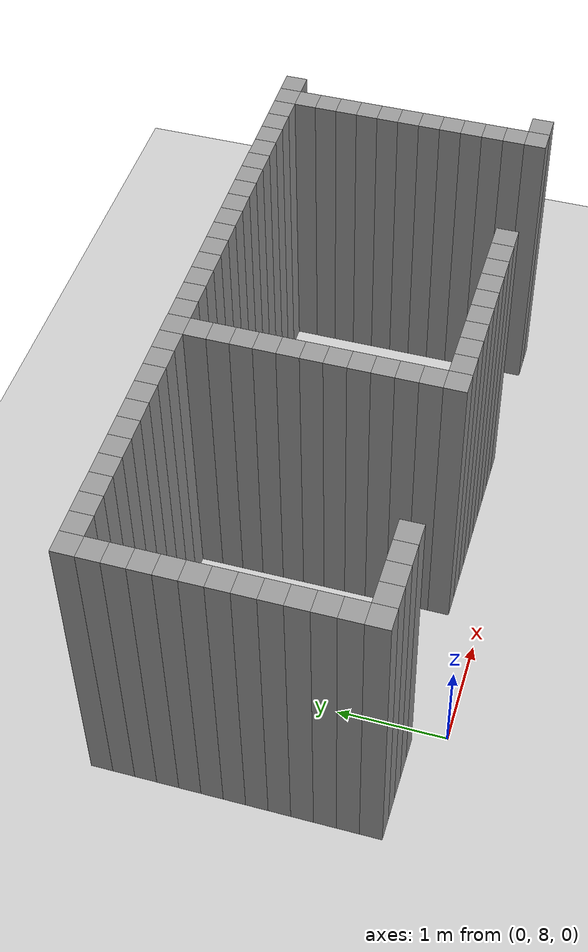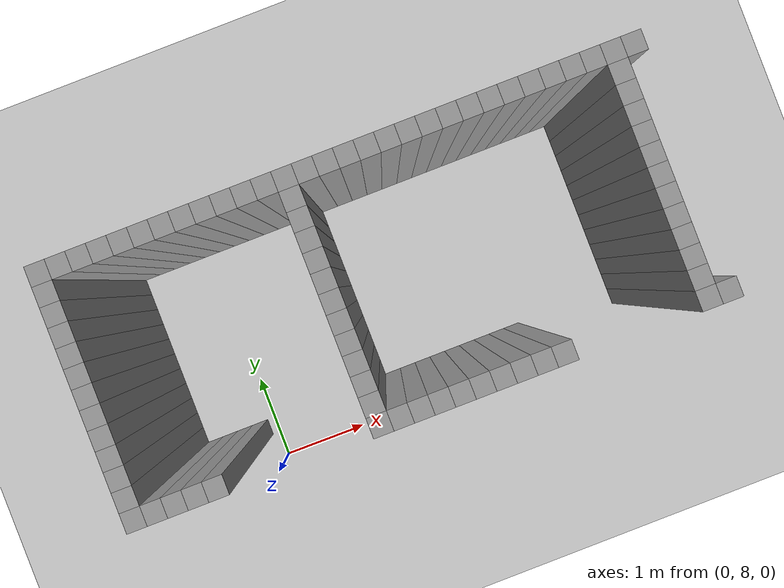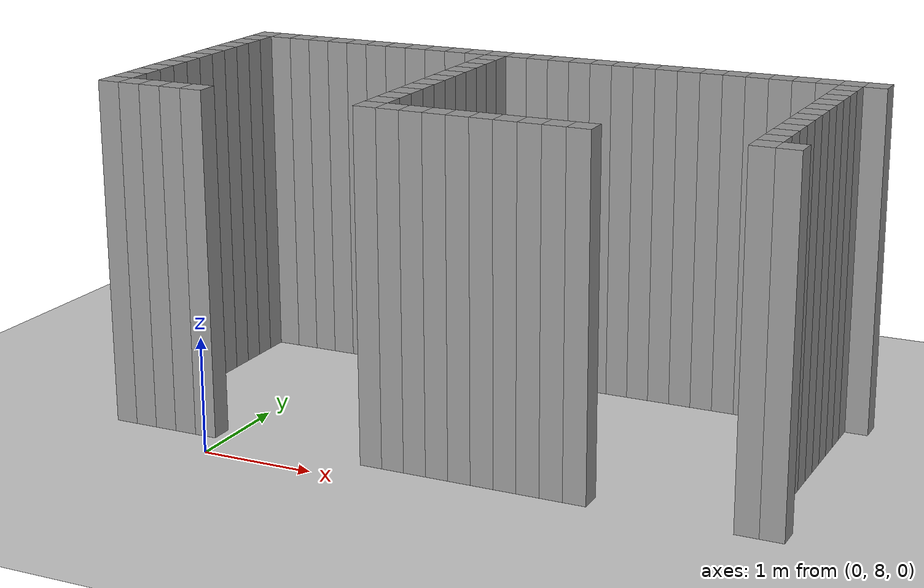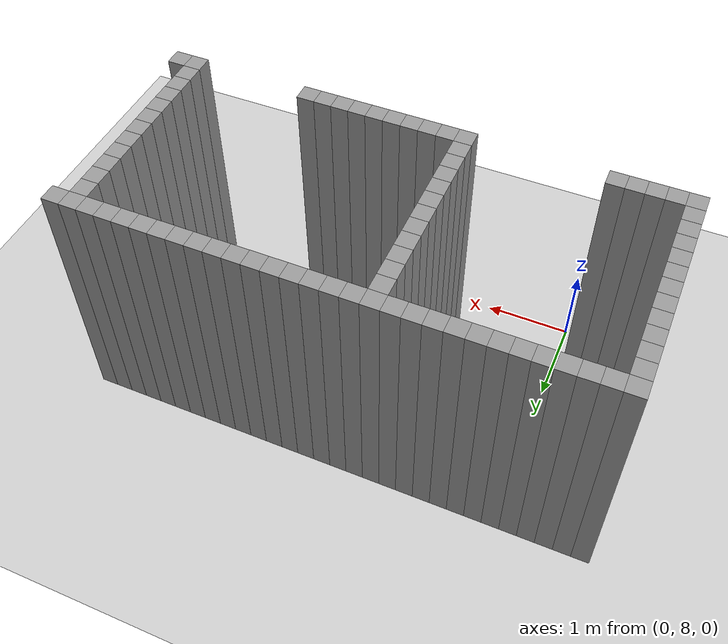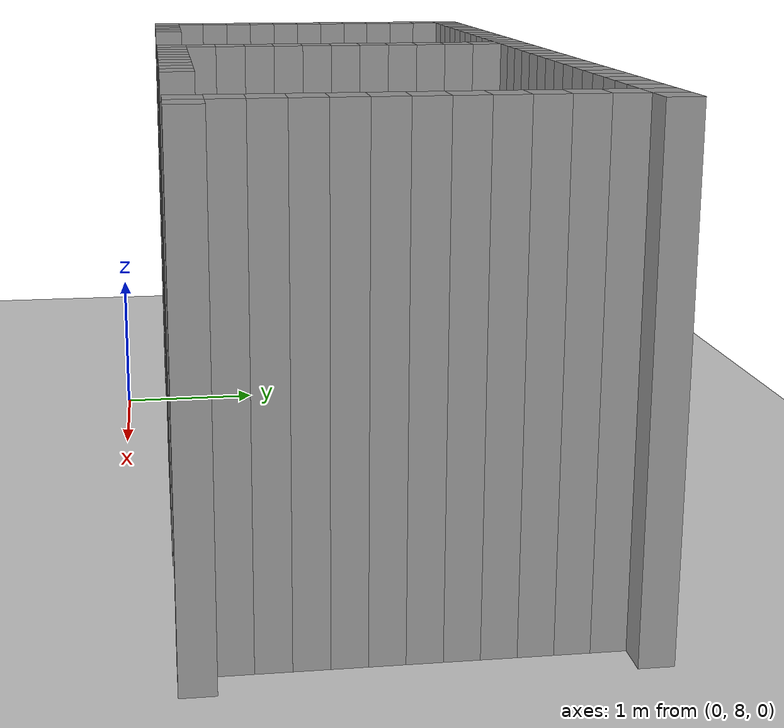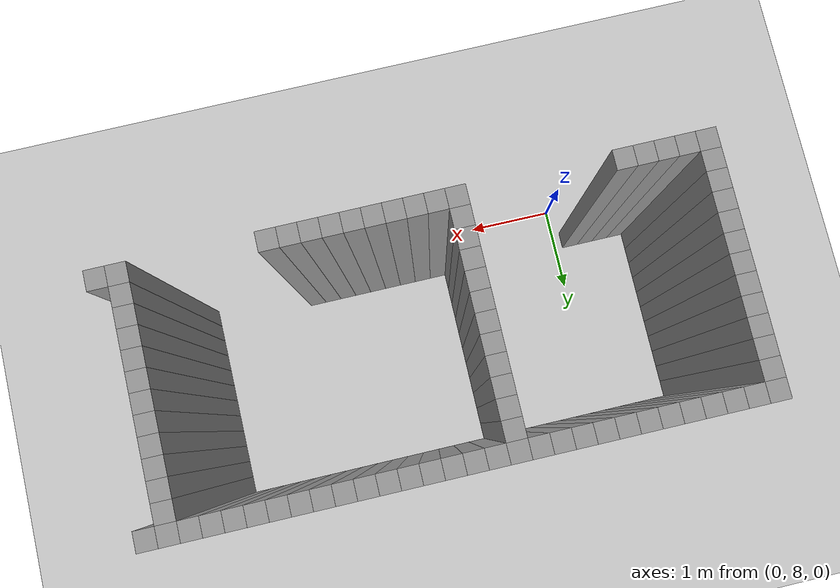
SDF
<sdf version="1.7">
 <world name="default">
  <model name="ground_plane">
   <static>1</static>
   <link name="link">
    <collision name="collision">
     <geometry><plane><normal>0 0 1</normal><size>100 100</size></plane></geometry>
     <surface>
      <contact><collide_bitmask>65535</collide_bitmask></contact>
      <friction><ode><mu>100</mu><mu2>50</mu2></ode></friction>
     </surface>
    </collision>
    <visual name="visual">
     <cast_shadows>0</cast_shadows>
     <geometry><plane><normal>0 0 1</normal><size>100 100</size></plane></geometry>
     <material>
      <script><uri>file://media/materials/scripts/gazebo.material</uri><name>Gazebo/Grey</name></script>
     </material>
    </visual>
   </link>
  </model>
  <model name="image49974">
   <pose>-1 -1 0 0 -0 0</pose>
   <link name="Wall_47">
    <collision name="Wall_47_Collision">
     <geometry><box><size>0.2 0.2 3</size></box></geometry>
     <pose>0 0 1.5 0 -0 0</pose>
    </collision>
    <visual name="Wall_47_Visual">
     <pose>0 0 1.5 0 -0 0</pose>
     <geometry><box><size>0.2 0.2 3</size></box></geometry>
     <material>
      <script><uri>file://media/materials/scripts/gazebo.material</uri><name>Gazebo/Grey</name></script>
      <ambient>1 1 1 1</ambient>
     </material>
     <meta><layer>0</layer></meta>
    </visual>
    <pose>0.0 9.4 0 0 -0 0</pose>
   </link>
   <link name="Wall_48">
    <collision name="Wall_48_Collision">
     <geometry><box><size>0.2 0.2 3</size></box></geometry>
     <pose>0 0 1.5 0 -0 0</pose>
    </collision>
    <visual name="Wall_48_Visual">
     <pose>0 0 1.5 0 -0 0</pose>
     <geometry><box><size>0.2 0.2 3</size></box></geometry>
     <material>
      <script><uri>file://media/materials/scripts/gazebo.material</uri><name>Gazebo/Grey</name></script>
      <ambient>1 1 1 1</ambient>
     </material>
     <meta><layer>0</layer></meta>
    </visual>
    <pose>0.0 9.600000000000001 0 0 -0 0</pose>
   </link>
   <link name="Wall_49">
    <collision name="Wall_49_Collision">
     <geometry><box><size>0.2 0.2 3</size></box></geometry>
     <pose>0 0 1.5 0 -0 0</pose>
    </collision>
    <visual name="Wall_49_Visual">
     <pose>0 0 1.5 0 -0 0</pose>
     <geometry><box><size>0.2 0.2 3</size></box></geometry>
     <material>
      <script><uri>file://media/materials/scripts/gazebo.material</uri><name>Gazebo/Grey</name></script>
      <ambient>1 1 1 1</ambient>
     </material>
     <meta><layer>0</layer></meta>
    </visual>
    <pose>0.0 9.8 0 0 -0 0</pose>
   </link>
   <link name="Wall_50">
    <collision name="Wall_50_Collision">
     <geometry><box><size>0.2 0.2 3</size></box></geometry>
     <pose>0 0 1.5 0 -0 0</pose>
    </collision>
    <visual name="Wall_50_Visual">
     <pose>0 0 1.5 0 -0 0</pose>
     <geometry><box><size>0.2 0.2 3</size></box></geometry>
     <material>
      <script><uri>file://media/materials/scripts/gazebo.material</uri><name>Gazebo/Grey</name></script>
      <ambient>1 1 1 1</ambient>
     </material>
     <meta><layer>0</layer></meta>
    </visual>
    <pose>0.0 10.0 0 0 -0 0</pose>
   </link>
   <link name="Wall_51">
    <collision name="Wall_51_Collision">
     <geometry><box><size>0.2 0.2 3</size></box></geometry>
     <pose>0 0 1.5 0 -0 0</pose>
    </collision>
    <visual name="Wall_51_Visual">
     <pose>0 0 1.5 0 -0 0</pose>
     <geometry><box><size>0.2 0.2 3</size></box></geometry>
     <material>
      <script><uri>file://media/materials/scripts/gazebo.material</uri><name>Gazebo/Grey</name></script>
      <ambient>1 1 1 1</ambient>
     </material>
     <meta><layer>0</layer></meta>
    </visual>
    <pose>0.0 10.200000000000001 0 0 -0 0</pose>
   </link>
   <link name="Wall_52">
    <collision name="Wall_52_Collision">
     <geometry><box><size>0.2 0.2 3</size></box></geometry>
     <pose>0 0 1.5 0 -0 0</pose>
    </collision>
    <visual name="Wall_52_Visual">
     <pose>0 0 1.5 0 -0 0</pose>
     <geometry><box><size>0.2 0.2 3</size></box></geometry>
     <material>
      <script><uri>file://media/materials/scripts/gazebo.material</uri><name>Gazebo/Grey</name></script>
      <ambient>1 1 1 1</ambient>
     </material>
     <meta><layer>0</layer></meta>
    </visual>
    <pose>0.0 10.4 0 0 -0 0</pose>
   </link>
   <link name="Wall_53">
    <collision name="Wall_53_Collision">
     <geometry><box><size>0.2 0.2 3</size></box></geometry>
     <pose>0 0 1.5 0 -0 0</pose>
    </collision>
    <visual name="Wall_53_Visual">
     <pose>0 0 1.5 0 -0 0</pose>
     <geometry><box><size>0.2 0.2 3</size></box></geometry>
     <material>
      <script><uri>file://media/materials/scripts/gazebo.material</uri><name>Gazebo/Grey</name></script>
      <ambient>1 1 1 1</ambient>
     </material>
     <meta><layer>0</layer></meta>
    </visual>
    <pose>0.0 10.600000000000001 0 0 -0 0</pose>
   </link>
   <link name="Wall_54">
    <collision name="Wall_54_Collision">
     <geometry><box><size>0.2 0.2 3</size></box></geometry>
     <pose>0 0 1.5 0 -0 0</pose>
    </collision>
    <visual name="Wall_54_Visual">
     <pose>0 0 1.5 0 -0 0</pose>
     <geometry><box><size>0.2 0.2 3</size></box></geometry>
     <material>
      <script><uri>file://media/materials/scripts/gazebo.material</uri><name>Gazebo/Grey</name></script>
      <ambient>1 1 1 1</ambient>
     </material>
     <meta><layer>0</layer></meta>
    </visual>
    <pose>0.0 10.8 0 0 -0 0</pose>
   </link>
   <link name="Wall_55">
    <collision name="Wall_55_Collision">
     <geometry><box><size>0.2 0.2 3</size></box></geometry>
     <pose>0 0 1.5 0 -0 0</pose>
    </collision>
    <visual name="Wall_55_Visual">
     <pose>0 0 1.5 0 -0 0</pose>
     <geometry><box><size>0.2 0.2 3</size></box></geometry>
     <material>
      <script><uri>file://media/materials/scripts/gazebo.material</uri><name>Gazebo/Grey</name></script>
      <ambient>1 1 1 1</ambient>
     </material>
     <meta><layer>0</layer></meta>
    </visual>
    <pose>0.0 11.0 0 0 -0 0</pose>
   </link>
   <link name="Wall_56">
    <collision name="Wall_56_Collision">
     <geometry><box><size>0.2 0.2 3</size></box></geometry>
     <pose>0 0 1.5 0 -0 0</pose>
    </collision>
    <visual name="Wall_56_Visual">
     <pose>0 0 1.5 0 -0 0</pose>
     <geometry><box><size>0.2 0.2 3</size></box></geometry>
     <material>
      <script><uri>file://media/materials/scripts/gazebo.material</uri><name>Gazebo/Grey</name></script>
      <ambient>1 1 1 1</ambient>
     </material>
     <meta><layer>0</layer></meta>
    </visual>
    <pose>0.0 11.200000000000001 0 0 -0 0</pose>
   </link>
   <link name="Wall_57">
    <collision name="Wall_57_Collision">
     <geometry><box><size>0.2 0.2 3</size></box></geometry>
     <pose>0 0 1.5 0 -0 0</pose>
    </collision>
    <visual name="Wall_57_Visual">
     <pose>0 0 1.5 0 -0 0</pose>
     <geometry><box><size>0.2 0.2 3</size></box></geometry>
     <material>
      <script><uri>file://media/materials/scripts/gazebo.material</uri><name>Gazebo/Grey</name></script>
      <ambient>1 1 1 1</ambient>
     </material>
     <meta><layer>0</layer></meta>
    </visual>
    <pose>0.0 11.4 0 0 -0 0</pose>
   </link>
   <link name="Wall_58">
    <collision name="Wall_58_Collision">
     <geometry><box><size>0.2 0.2 3</size></box></geometry>
     <pose>0 0 1.5 0 -0 0</pose>
    </collision>
    <visual name="Wall_58_Visual">
     <pose>0 0 1.5 0 -0 0</pose>
     <geometry><box><size>0.2 0.2 3</size></box></geometry>
     <material>
      <script><uri>file://media/materials/scripts/gazebo.material</uri><name>Gazebo/Grey</name></script>
      <ambient>1 1 1 1</ambient>
     </material>
     <meta><layer>0</layer></meta>
    </visual>
    <pose>0.0 11.600000000000001 0 0 -0 0</pose>
   </link>
   <link name="Wall_59">
    <collision name="Wall_59_Collision">
     <geometry><box><size>0.2 0.2 3</size></box></geometry>
     <pose>0 0 1.5 0 -0 0</pose>
    </collision>
    <visual name="Wall_59_Visual">
     <pose>0 0 1.5 0 -0 0</pose>
     <geometry><box><size>0.2 0.2 3</size></box></geometry>
     <material>
      <script><uri>file://media/materials/scripts/gazebo.material</uri><name>Gazebo/Grey</name></script>
      <ambient>1 1 1 1</ambient>
     </material>
     <meta><layer>0</layer></meta>
    </visual>
    <pose>0.0 11.8 0 0 -0 0</pose>
   </link>
   <link name="Wall_64">
    <collision name="Wall_64_Collision">
     <geometry><box><size>0.2 0.2 3</size></box></geometry>
     <pose>0 0 1.5 0 -0 0</pose>
    </collision>
    <visual name="Wall_64_Visual">
     <pose>0 0 1.5 0 -0 0</pose>
     <geometry><box><size>0.2 0.2 3</size></box></geometry>
     <material>
      <script><uri>file://media/materials/scripts/gazebo.material</uri><name>Gazebo/Grey</name></script>
      <ambient>1 1 1 1</ambient>
     </material>
     <meta><layer>0</layer></meta>
    </visual>
    <pose>0.2 9.4 0 0 -0 0</pose>
   </link>
   <link name="Wall_65">
    <collision name="Wall_65_Collision">
     <geometry><box><size>0.2 0.2 3</size></box></geometry>
     <pose>0 0 1.5 0 -0 0</pose>
    </collision>
    <visual name="Wall_65_Visual">
     <pose>0 0 1.5 0 -0 0</pose>
     <geometry><box><size>0.2 0.2 3</size></box></geometry>
     <material>
      <script><uri>file://media/materials/scripts/gazebo.material</uri><name>Gazebo/Grey</name></script>
      <ambient>1 1 1 1</ambient>
     </material>
     <meta><layer>0</layer></meta>
    </visual>
    <pose>0.2 11.8 0 0 -0 0</pose>
   </link>
   <link name="Wall_70">
    <collision name="Wall_70_Collision">
     <geometry><box><size>0.2 0.2 3</size></box></geometry>
     <pose>0 0 1.5 0 -0 0</pose>
    </collision>
    <visual name="Wall_70_Visual">
     <pose>0 0 1.5 0 -0 0</pose>
     <geometry><box><size>0.2 0.2 3</size></box></geometry>
     <material>
      <script><uri>file://media/materials/scripts/gazebo.material</uri><name>Gazebo/Grey</name></script>
      <ambient>1 1 1 1</ambient>
     </material>
     <meta><layer>0</layer></meta>
    </visual>
    <pose>0.4 9.4 0 0 -0 0</pose>
   </link>
   <link name="Wall_71">
    <collision name="Wall_71_Collision">
     <geometry><box><size>0.2 0.2 3</size></box></geometry>
     <pose>0 0 1.5 0 -0 0</pose>
    </collision>
    <visual name="Wall_71_Visual">
     <pose>0 0 1.5 0 -0 0</pose>
     <geometry><box><size>0.2 0.2 3</size></box></geometry>
     <material>
      <script><uri>file://media/materials/scripts/gazebo.material</uri><name>Gazebo/Grey</name></script>
      <ambient>1 1 1 1</ambient>
     </material>
     <meta><layer>0</layer></meta>
    </visual>
    <pose>0.4 11.8 0 0 -0 0</pose>
   </link>
   <link name="Wall_76">
    <collision name="Wall_76_Collision">
     <geometry><box><size>0.2 0.2 3</size></box></geometry>
     <pose>0 0 1.5 0 -0 0</pose>
    </collision>
    <visual name="Wall_76_Visual">
     <pose>0 0 1.5 0 -0 0</pose>
     <geometry><box><size>0.2 0.2 3</size></box></geometry>
     <material>
      <script><uri>file://media/materials/scripts/gazebo.material</uri><name>Gazebo/Grey</name></script>
      <ambient>1 1 1 1</ambient>
     </material>
     <meta><layer>0</layer></meta>
    </visual>
    <pose>0.6000000000000001 9.4 0 0 -0 0</pose>
   </link>
   <link name="Wall_77">
    <collision name="Wall_77_Collision">
     <geometry><box><size>0.2 0.2 3</size></box></geometry>
     <pose>0 0 1.5 0 -0 0</pose>
    </collision>
    <visual name="Wall_77_Visual">
     <pose>0 0 1.5 0 -0 0</pose>
     <geometry><box><size>0.2 0.2 3</size></box></geometry>
     <material>
      <script><uri>file://media/materials/scripts/gazebo.material</uri><name>Gazebo/Grey</name></script>
      <ambient>1 1 1 1</ambient>
     </material>
     <meta><layer>0</layer></meta>
    </visual>
    <pose>0.6000000000000001 11.8 0 0 -0 0</pose>
   </link>
   <link name="Wall_82">
    <collision name="Wall_82_Collision">
     <geometry><box><size>0.2 0.2 3</size></box></geometry>
     <pose>0 0 1.5 0 -0 0</pose>
    </collision>
    <visual name="Wall_82_Visual">
     <pose>0 0 1.5 0 -0 0</pose>
     <geometry><box><size>0.2 0.2 3</size></box></geometry>
     <material>
      <script><uri>file://media/materials/scripts/gazebo.material</uri><name>Gazebo/Grey</name></script>
      <ambient>1 1 1 1</ambient>
     </material>
     <meta><layer>0</layer></meta>
    </visual>
    <pose>0.8 9.4 0 0 -0 0</pose>
   </link>
   <link name="Wall_83">
    <collision name="Wall_83_Collision">
     <geometry><box><size>0.2 0.2 3</size></box></geometry>
     <pose>0 0 1.5 0 -0 0</pose>
    </collision>
    <visual name="Wall_83_Visual">
     <pose>0 0 1.5 0 -0 0</pose>
     <geometry><box><size>0.2 0.2 3</size></box></geometry>
     <material>
      <script><uri>file://media/materials/scripts/gazebo.material</uri><name>Gazebo/Grey</name></script>
      <ambient>1 1 1 1</ambient>
     </material>
     <meta><layer>0</layer></meta>
    </visual>
    <pose>0.8 11.8 0 0 -0 0</pose>
   </link>
   <link name="Wall_88">
    <collision name="Wall_88_Collision">
     <geometry><box><size>0.2 0.2 3</size></box></geometry>
     <pose>0 0 1.5 0 -0 0</pose>
    </collision>
    <visual name="Wall_88_Visual">
     <pose>0 0 1.5 0 -0 0</pose>
     <geometry><box><size>0.2 0.2 3</size></box></geometry>
     <material>
      <script><uri>file://media/materials/scripts/gazebo.material</uri><name>Gazebo/Grey</name></script>
      <ambient>1 1 1 1</ambient>
     </material>
     <meta><layer>0</layer></meta>
    </visual>
    <pose>1.0 11.8 0 0 -0 0</pose>
   </link>
   <link name="Wall_93">
    <collision name="Wall_93_Collision">
     <geometry><box><size>0.2 0.2 3</size></box></geometry>
     <pose>0 0 1.5 0 -0 0</pose>
    </collision>
    <visual name="Wall_93_Visual">
     <pose>0 0 1.5 0 -0 0</pose>
     <geometry><box><size>0.2 0.2 3</size></box></geometry>
     <material>
      <script><uri>file://media/materials/scripts/gazebo.material</uri><name>Gazebo/Grey</name></script>
      <ambient>1 1 1 1</ambient>
     </material>
     <meta><layer>0</layer></meta>
    </visual>
    <pose>1.2000000000000002 11.8 0 0 -0 0</pose>
   </link>
   <link name="Wall_98">
    <collision name="Wall_98_Collision">
     <geometry><box><size>0.2 0.2 3</size></box></geometry>
     <pose>0 0 1.5 0 -0 0</pose>
    </collision>
    <visual name="Wall_98_Visual">
     <pose>0 0 1.5 0 -0 0</pose>
     <geometry><box><size>0.2 0.2 3</size></box></geometry>
     <material>
      <script><uri>file://media/materials/scripts/gazebo.material</uri><name>Gazebo/Grey</name></script>
      <ambient>1 1 1 1</ambient>
     </material>
     <meta><layer>0</layer></meta>
    </visual>
    <pose>1.4000000000000001 11.8 0 0 -0 0</pose>
   </link>
   <link name="Wall_102">
    <collision name="Wall_102_Collision">
     <geometry><box><size>0.2 0.2 3</size></box></geometry>
     <pose>0 0 1.5 0 -0 0</pose>
    </collision>
    <visual name="Wall_102_Visual">
     <pose>0 0 1.5 0 -0 0</pose>
     <geometry><box><size>0.2 0.2 3</size></box></geometry>
     <material>
      <script><uri>file://media/materials/scripts/gazebo.material</uri><name>Gazebo/Grey</name></script>
      <ambient>1 1 1 1</ambient>
     </material>
     <meta><layer>0</layer></meta>
    </visual>
    <pose>1.6 11.8 0 0 -0 0</pose>
   </link>
   <link name="Wall_106">
    <collision name="Wall_106_Collision">
     <geometry><box><size>0.2 0.2 3</size></box></geometry>
     <pose>0 0 1.5 0 -0 0</pose>
    </collision>
    <visual name="Wall_106_Visual">
     <pose>0 0 1.5 0 -0 0</pose>
     <geometry><box><size>0.2 0.2 3</size></box></geometry>
     <material>
      <script><uri>file://media/materials/scripts/gazebo.material</uri><name>Gazebo/Grey</name></script>
      <ambient>1 1 1 1</ambient>
     </material>
     <meta><layer>0</layer></meta>
    </visual>
    <pose>1.8 11.8 0 0 -0 0</pose>
   </link>
   <link name="Wall_110">
    <collision name="Wall_110_Collision">
     <geometry><box><size>0.2 0.2 3</size></box></geometry>
     <pose>0 0 1.5 0 -0 0</pose>
    </collision>
    <visual name="Wall_110_Visual">
     <pose>0 0 1.5 0 -0 0</pose>
     <geometry><box><size>0.2 0.2 3</size></box></geometry>
     <material>
      <script><uri>file://media/materials/scripts/gazebo.material</uri><name>Gazebo/Grey</name></script>
      <ambient>1 1 1 1</ambient>
     </material>
     <meta><layer>0</layer></meta>
    </visual>
    <pose>2.0 11.8 0 0 -0 0</pose>
   </link>
   <link name="Wall_114">
    <collision name="Wall_114_Collision">
     <geometry><box><size>0.2 0.2 3</size></box></geometry>
     <pose>0 0 1.5 0 -0 0</pose>
    </collision>
    <visual name="Wall_114_Visual">
     <pose>0 0 1.5 0 -0 0</pose>
     <geometry><box><size>0.2 0.2 3</size></box></geometry>
     <material>
      <script><uri>file://media/materials/scripts/gazebo.material</uri><name>Gazebo/Grey</name></script>
      <ambient>1 1 1 1</ambient>
     </material>
     <meta><layer>0</layer></meta>
    </visual>
    <pose>2.2 11.8 0 0 -0 0</pose>
   </link>
   <link name="Wall_118">
    <collision name="Wall_118_Collision">
     <geometry><box><size>0.2 0.2 3</size></box></geometry>
     <pose>0 0 1.5 0 -0 0</pose>
    </collision>
    <visual name="Wall_118_Visual">
     <pose>0 0 1.5 0 -0 0</pose>
     <geometry><box><size>0.2 0.2 3</size></box></geometry>
     <material>
      <script><uri>file://media/materials/scripts/gazebo.material</uri><name>Gazebo/Grey</name></script>
      <ambient>1 1 1 1</ambient>
     </material>
     <meta><layer>0</layer></meta>
    </visual>
    <pose>2.4000000000000004 9.4 0 0 -0 0</pose>
   </link>
   <link name="Wall_119">
    <collision name="Wall_119_Collision">
     <geometry><box><size>0.2 0.2 3</size></box></geometry>
     <pose>0 0 1.5 0 -0 0</pose>
    </collision>
    <visual name="Wall_119_Visual">
     <pose>0 0 1.5 0 -0 0</pose>
     <geometry><box><size>0.2 0.2 3</size></box></geometry>
     <material>
      <script><uri>file://media/materials/scripts/gazebo.material</uri><name>Gazebo/Grey</name></script>
      <ambient>1 1 1 1</ambient>
     </material>
     <meta><layer>0</layer></meta>
    </visual>
    <pose>2.4000000000000004 9.600000000000001 0 0 -0 0</pose>
   </link>
   <link name="Wall_120">
    <collision name="Wall_120_Collision">
     <geometry><box><size>0.2 0.2 3</size></box></geometry>
     <pose>0 0 1.5 0 -0 0</pose>
    </collision>
    <visual name="Wall_120_Visual">
     <pose>0 0 1.5 0 -0 0</pose>
     <geometry><box><size>0.2 0.2 3</size></box></geometry>
     <material>
      <script><uri>file://media/materials/scripts/gazebo.material</uri><name>Gazebo/Grey</name></script>
      <ambient>1 1 1 1</ambient>
     </material>
     <meta><layer>0</layer></meta>
    </visual>
    <pose>2.4000000000000004 9.8 0 0 -0 0</pose>
   </link>
   <link name="Wall_121">
    <collision name="Wall_121_Collision">
     <geometry><box><size>0.2 0.2 3</size></box></geometry>
     <pose>0 0 1.5 0 -0 0</pose>
    </collision>
    <visual name="Wall_121_Visual">
     <pose>0 0 1.5 0 -0 0</pose>
     <geometry><box><size>0.2 0.2 3</size></box></geometry>
     <material>
      <script><uri>file://media/materials/scripts/gazebo.material</uri><name>Gazebo/Grey</name></script>
      <ambient>1 1 1 1</ambient>
     </material>
     <meta><layer>0</layer></meta>
    </visual>
    <pose>2.4000000000000004 10.0 0 0 -0 0</pose>
   </link>
   <link name="Wall_122">
    <collision name="Wall_122_Collision">
     <geometry><box><size>0.2 0.2 3</size></box></geometry>
     <pose>0 0 1.5 0 -0 0</pose>
    </collision>
    <visual name="Wall_122_Visual">
     <pose>0 0 1.5 0 -0 0</pose>
     <geometry><box><size>0.2 0.2 3</size></box></geometry>
     <material>
      <script><uri>file://media/materials/scripts/gazebo.material</uri><name>Gazebo/Grey</name></script>
      <ambient>1 1 1 1</ambient>
     </material>
     <meta><layer>0</layer></meta>
    </visual>
    <pose>2.4000000000000004 10.200000000000001 0 0 -0 0</pose>
   </link>
   <link name="Wall_123">
    <collision name="Wall_123_Collision">
     <geometry><box><size>0.2 0.2 3</size></box></geometry>
     <pose>0 0 1.5 0 -0 0</pose>
    </collision>
    <visual name="Wall_123_Visual">
     <pose>0 0 1.5 0 -0 0</pose>
     <geometry><box><size>0.2 0.2 3</size></box></geometry>
     <material>
      <script><uri>file://media/materials/scripts/gazebo.material</uri><name>Gazebo/Grey</name></script>
      <ambient>1 1 1 1</ambient>
     </material>
     <meta><layer>0</layer></meta>
    </visual>
    <pose>2.4000000000000004 10.4 0 0 -0 0</pose>
   </link>
   <link name="Wall_124">
    <collision name="Wall_124_Collision">
     <geometry><box><size>0.2 0.2 3</size></box></geometry>
     <pose>0 0 1.5 0 -0 0</pose>
    </collision>
    <visual name="Wall_124_Visual">
     <pose>0 0 1.5 0 -0 0</pose>
     <geometry><box><size>0.2 0.2 3</size></box></geometry>
     <material>
      <script><uri>file://media/materials/scripts/gazebo.material</uri><name>Gazebo/Grey</name></script>
      <ambient>1 1 1 1</ambient>
     </material>
     <meta><layer>0</layer></meta>
    </visual>
    <pose>2.4000000000000004 10.600000000000001 0 0 -0 0</pose>
   </link>
   <link name="Wall_125">
    <collision name="Wall_125_Collision">
     <geometry><box><size>0.2 0.2 3</size></box></geometry>
     <pose>0 0 1.5 0 -0 0</pose>
    </collision>
    <visual name="Wall_125_Visual">
     <pose>0 0 1.5 0 -0 0</pose>
     <geometry><box><size>0.2 0.2 3</size></box></geometry>
     <material>
      <script><uri>file://media/materials/scripts/gazebo.material</uri><name>Gazebo/Grey</name></script>
      <ambient>1 1 1 1</ambient>
     </material>
     <meta><layer>0</layer></meta>
    </visual>
    <pose>2.4000000000000004 10.8 0 0 -0 0</pose>
   </link>
   <link name="Wall_126">
    <collision name="Wall_126_Collision">
     <geometry><box><size>0.2 0.2 3</size></box></geometry>
     <pose>0 0 1.5 0 -0 0</pose>
    </collision>
    <visual name="Wall_126_Visual">
     <pose>0 0 1.5 0 -0 0</pose>
     <geometry><box><size>0.2 0.2 3</size></box></geometry>
     <material>
      <script><uri>file://media/materials/scripts/gazebo.material</uri><name>Gazebo/Grey</name></script>
      <ambient>1 1 1 1</ambient>
     </material>
     <meta><layer>0</layer></meta>
    </visual>
    <pose>2.4000000000000004 11.0 0 0 -0 0</pose>
   </link>
   <link name="Wall_127">
    <collision name="Wall_127_Collision">
     <geometry><box><size>0.2 0.2 3</size></box></geometry>
     <pose>0 0 1.5 0 -0 0</pose>
    </collision>
    <visual name="Wall_127_Visual">
     <pose>0 0 1.5 0 -0 0</pose>
     <geometry><box><size>0.2 0.2 3</size></box></geometry>
     <material>
      <script><uri>file://media/materials/scripts/gazebo.material</uri><name>Gazebo/Grey</name></script>
      <ambient>1 1 1 1</ambient>
     </material>
     <meta><layer>0</layer></meta>
    </visual>
    <pose>2.4000000000000004 11.200000000000001 0 0 -0 0</pose>
   </link>
   <link name="Wall_128">
    <collision name="Wall_128_Collision">
     <geometry><box><size>0.2 0.2 3</size></box></geometry>
     <pose>0 0 1.5 0 -0 0</pose>
    </collision>
    <visual name="Wall_128_Visual">
     <pose>0 0 1.5 0 -0 0</pose>
     <geometry><box><size>0.2 0.2 3</size></box></geometry>
     <material>
      <script><uri>file://media/materials/scripts/gazebo.material</uri><name>Gazebo/Grey</name></script>
      <ambient>1 1 1 1</ambient>
     </material>
     <meta><layer>0</layer></meta>
    </visual>
    <pose>2.4000000000000004 11.4 0 0 -0 0</pose>
   </link>
   <link name="Wall_129">
    <collision name="Wall_129_Collision">
     <geometry><box><size>0.2 0.2 3</size></box></geometry>
     <pose>0 0 1.5 0 -0 0</pose>
    </collision>
    <visual name="Wall_129_Visual">
     <pose>0 0 1.5 0 -0 0</pose>
     <geometry><box><size>0.2 0.2 3</size></box></geometry>
     <material>
      <script><uri>file://media/materials/scripts/gazebo.material</uri><name>Gazebo/Grey</name></script>
      <ambient>1 1 1 1</ambient>
     </material>
     <meta><layer>0</layer></meta>
    </visual>
    <pose>2.4000000000000004 11.600000000000001 0 0 -0 0</pose>
   </link>
   <link name="Wall_130">
    <collision name="Wall_130_Collision">
     <geometry><box><size>0.2 0.2 3</size></box></geometry>
     <pose>0 0 1.5 0 -0 0</pose>
    </collision>
    <visual name="Wall_130_Visual">
     <pose>0 0 1.5 0 -0 0</pose>
     <geometry><box><size>0.2 0.2 3</size></box></geometry>
     <material>
      <script><uri>file://media/materials/scripts/gazebo.material</uri><name>Gazebo/Grey</name></script>
      <ambient>1 1 1 1</ambient>
     </material>
     <meta><layer>0</layer></meta>
    </visual>
    <pose>2.4000000000000004 11.8 0 0 -0 0</pose>
   </link>
   <link name="Wall_134">
    <collision name="Wall_134_Collision">
     <geometry><box><size>0.2 0.2 3</size></box></geometry>
     <pose>0 0 1.5 0 -0 0</pose>
    </collision>
    <visual name="Wall_134_Visual">
     <pose>0 0 1.5 0 -0 0</pose>
     <geometry><box><size>0.2 0.2 3</size></box></geometry>
     <material>
      <script><uri>file://media/materials/scripts/gazebo.material</uri><name>Gazebo/Grey</name></script>
      <ambient>1 1 1 1</ambient>
     </material>
     <meta><layer>0</layer></meta>
    </visual>
    <pose>2.6 9.4 0 0 -0 0</pose>
   </link>
   <link name="Wall_135">
    <collision name="Wall_135_Collision">
     <geometry><box><size>0.2 0.2 3</size></box></geometry>
     <pose>0 0 1.5 0 -0 0</pose>
    </collision>
    <visual name="Wall_135_Visual">
     <pose>0 0 1.5 0 -0 0</pose>
     <geometry><box><size>0.2 0.2 3</size></box></geometry>
     <material>
      <script><uri>file://media/materials/scripts/gazebo.material</uri><name>Gazebo/Grey</name></script>
      <ambient>1 1 1 1</ambient>
     </material>
     <meta><layer>0</layer></meta>
    </visual>
    <pose>2.6 11.8 0 0 -0 0</pose>
   </link>
   <link name="Wall_143">
    <collision name="Wall_143_Collision">
     <geometry><box><size>0.2 0.2 3</size></box></geometry>
     <pose>0 0 1.5 0 -0 0</pose>
    </collision>
    <visual name="Wall_143_Visual">
     <pose>0 0 1.5 0 -0 0</pose>
     <geometry><box><size>0.2 0.2 3</size></box></geometry>
     <material>
      <script><uri>file://media/materials/scripts/gazebo.material</uri><name>Gazebo/Grey</name></script>
      <ambient>1 1 1 1</ambient>
     </material>
     <meta><layer>0</layer></meta>
    </visual>
    <pose>2.8000000000000003 9.4 0 0 -0 0</pose>
   </link>
   <link name="Wall_144">
    <collision name="Wall_144_Collision">
     <geometry><box><size>0.2 0.2 3</size></box></geometry>
     <pose>0 0 1.5 0 -0 0</pose>
    </collision>
    <visual name="Wall_144_Visual">
     <pose>0 0 1.5 0 -0 0</pose>
     <geometry><box><size>0.2 0.2 3</size></box></geometry>
     <material>
      <script><uri>file://media/materials/scripts/gazebo.material</uri><name>Gazebo/Grey</name></script>
      <ambient>1 1 1 1</ambient>
     </material>
     <meta><layer>0</layer></meta>
    </visual>
    <pose>2.8000000000000003 11.8 0 0 -0 0</pose>
   </link>
   <link name="Wall_147">
    <collision name="Wall_147_Collision">
     <geometry><box><size>0.2 0.2 3</size></box></geometry>
     <pose>0 0 1.5 0 -0 0</pose>
    </collision>
    <visual name="Wall_147_Visual">
     <pose>0 0 1.5 0 -0 0</pose>
     <geometry><box><size>0.2 0.2 3</size></box></geometry>
     <material>
      <script><uri>file://media/materials/scripts/gazebo.material</uri><name>Gazebo/Grey</name></script>
      <ambient>1 1 1 1</ambient>
     </material>
     <meta><layer>0</layer></meta>
    </visual>
    <pose>3.0 9.4 0 0 -0 0</pose>
   </link>
   <link name="Wall_148">
    <collision name="Wall_148_Collision">
     <geometry><box><size>0.2 0.2 3</size></box></geometry>
     <pose>0 0 1.5 0 -0 0</pose>
    </collision>
    <visual name="Wall_148_Visual">
     <pose>0 0 1.5 0 -0 0</pose>
     <geometry><box><size>0.2 0.2 3</size></box></geometry>
     <material>
      <script><uri>file://media/materials/scripts/gazebo.material</uri><name>Gazebo/Grey</name></script>
      <ambient>1 1 1 1</ambient>
     </material>
     <meta><layer>0</layer></meta>
    </visual>
    <pose>3.0 11.8 0 0 -0 0</pose>
   </link>
   <link name="Wall_151">
    <collision name="Wall_151_Collision">
     <geometry><box><size>0.2 0.2 3</size></box></geometry>
     <pose>0 0 1.5 0 -0 0</pose>
    </collision>
    <visual name="Wall_151_Visual">
     <pose>0 0 1.5 0 -0 0</pose>
     <geometry><box><size>0.2 0.2 3</size></box></geometry>
     <material>
      <script><uri>file://media/materials/scripts/gazebo.material</uri><name>Gazebo/Grey</name></script>
      <ambient>1 1 1 1</ambient>
     </material>
     <meta><layer>0</layer></meta>
    </visual>
    <pose>3.2 9.4 0 0 -0 0</pose>
   </link>
   <link name="Wall_152">
    <collision name="Wall_152_Collision">
     <geometry><box><size>0.2 0.2 3</size></box></geometry>
     <pose>0 0 1.5 0 -0 0</pose>
    </collision>
    <visual name="Wall_152_Visual">
     <pose>0 0 1.5 0 -0 0</pose>
     <geometry><box><size>0.2 0.2 3</size></box></geometry>
     <material>
      <script><uri>file://media/materials/scripts/gazebo.material</uri><name>Gazebo/Grey</name></script>
      <ambient>1 1 1 1</ambient>
     </material>
     <meta><layer>0</layer></meta>
    </visual>
    <pose>3.2 11.8 0 0 -0 0</pose>
   </link>
   <link name="Wall_170">
    <collision name="Wall_170_Collision">
     <geometry><box><size>0.2 0.2 3</size></box></geometry>
     <pose>0 0 1.5 0 -0 0</pose>
    </collision>
    <visual name="Wall_170_Visual">
     <pose>0 0 1.5 0 -0 0</pose>
     <geometry><box><size>0.2 0.2 3</size></box></geometry>
     <material>
      <script><uri>file://media/materials/scripts/gazebo.material</uri><name>Gazebo/Grey</name></script>
      <ambient>1 1 1 1</ambient>
     </material>
     <meta><layer>0</layer></meta>
    </visual>
    <pose>3.4000000000000004 9.4 0 0 -0 0</pose>
   </link>
   <link name="Wall_171">
    <collision name="Wall_171_Collision">
     <geometry><box><size>0.2 0.2 3</size></box></geometry>
     <pose>0 0 1.5 0 -0 0</pose>
    </collision>
    <visual name="Wall_171_Visual">
     <pose>0 0 1.5 0 -0 0</pose>
     <geometry><box><size>0.2 0.2 3</size></box></geometry>
     <material>
      <script><uri>file://media/materials/scripts/gazebo.material</uri><name>Gazebo/Grey</name></script>
      <ambient>1 1 1 1</ambient>
     </material>
     <meta><layer>0</layer></meta>
    </visual>
    <pose>3.4000000000000004 11.8 0 0 -0 0</pose>
   </link>
   <link name="Wall_174">
    <collision name="Wall_174_Collision">
     <geometry><box><size>0.2 0.2 3</size></box></geometry>
     <pose>0 0 1.5 0 -0 0</pose>
    </collision>
    <visual name="Wall_174_Visual">
     <pose>0 0 1.5 0 -0 0</pose>
     <geometry><box><size>0.2 0.2 3</size></box></geometry>
     <material>
      <script><uri>file://media/materials/scripts/gazebo.material</uri><name>Gazebo/Grey</name></script>
      <ambient>1 1 1 1</ambient>
     </material>
     <meta><layer>0</layer></meta>
    </visual>
    <pose>3.6 9.4 0 0 -0 0</pose>
   </link>
   <link name="Wall_175">
    <collision name="Wall_175_Collision">
     <geometry><box><size>0.2 0.2 3</size></box></geometry>
     <pose>0 0 1.5 0 -0 0</pose>
    </collision>
    <visual name="Wall_175_Visual">
     <pose>0 0 1.5 0 -0 0</pose>
     <geometry><box><size>0.2 0.2 3</size></box></geometry>
     <material>
      <script><uri>file://media/materials/scripts/gazebo.material</uri><name>Gazebo/Grey</name></script>
      <ambient>1 1 1 1</ambient>
     </material>
     <meta><layer>0</layer></meta>
    </visual>
    <pose>3.6 11.8 0 0 -0 0</pose>
   </link>
   <link name="Wall_178">
    <collision name="Wall_178_Collision">
     <geometry><box><size>0.2 0.2 3</size></box></geometry>
     <pose>0 0 1.5 0 -0 0</pose>
    </collision>
    <visual name="Wall_178_Visual">
     <pose>0 0 1.5 0 -0 0</pose>
     <geometry><box><size>0.2 0.2 3</size></box></geometry>
     <material>
      <script><uri>file://media/materials/scripts/gazebo.material</uri><name>Gazebo/Grey</name></script>
      <ambient>1 1 1 1</ambient>
     </material>
     <meta><layer>0</layer></meta>
    </visual>
    <pose>3.8000000000000003 9.4 0 0 -0 0</pose>
   </link>
   <link name="Wall_179">
    <collision name="Wall_179_Collision">
     <geometry><box><size>0.2 0.2 3</size></box></geometry>
     <pose>0 0 1.5 0 -0 0</pose>
    </collision>
    <visual name="Wall_179_Visual">
     <pose>0 0 1.5 0 -0 0</pose>
     <geometry><box><size>0.2 0.2 3</size></box></geometry>
     <material>
      <script><uri>file://media/materials/scripts/gazebo.material</uri><name>Gazebo/Grey</name></script>
      <ambient>1 1 1 1</ambient>
     </material>
     <meta><layer>0</layer></meta>
    </visual>
    <pose>3.8000000000000003 11.8 0 0 -0 0</pose>
   </link>
   <link name="Wall_182">
    <collision name="Wall_182_Collision">
     <geometry><box><size>0.2 0.2 3</size></box></geometry>
     <pose>0 0 1.5 0 -0 0</pose>
    </collision>
    <visual name="Wall_182_Visual">
     <pose>0 0 1.5 0 -0 0</pose>
     <geometry><box><size>0.2 0.2 3</size></box></geometry>
     <material>
      <script><uri>file://media/materials/scripts/gazebo.material</uri><name>Gazebo/Grey</name></script>
      <ambient>1 1 1 1</ambient>
     </material>
     <meta><layer>0</layer></meta>
    </visual>
    <pose>4.0 9.4 0 0 -0 0</pose>
   </link>
   <link name="Wall_183">
    <collision name="Wall_183_Collision">
     <geometry><box><size>0.2 0.2 3</size></box></geometry>
     <pose>0 0 1.5 0 -0 0</pose>
    </collision>
    <visual name="Wall_183_Visual">
     <pose>0 0 1.5 0 -0 0</pose>
     <geometry><box><size>0.2 0.2 3</size></box></geometry>
     <material>
      <script><uri>file://media/materials/scripts/gazebo.material</uri><name>Gazebo/Grey</name></script>
      <ambient>1 1 1 1</ambient>
     </material>
     <meta><layer>0</layer></meta>
    </visual>
    <pose>4.0 11.8 0 0 -0 0</pose>
   </link>
   <link name="Wall_186">
    <collision name="Wall_186_Collision">
     <geometry><box><size>0.2 0.2 3</size></box></geometry>
     <pose>0 0 1.5 0 -0 0</pose>
    </collision>
    <visual name="Wall_186_Visual">
     <pose>0 0 1.5 0 -0 0</pose>
     <geometry><box><size>0.2 0.2 3</size></box></geometry>
     <material>
      <script><uri>file://media/materials/scripts/gazebo.material</uri><name>Gazebo/Grey</name></script>
      <ambient>1 1 1 1</ambient>
     </material>
     <meta><layer>0</layer></meta>
    </visual>
    <pose>4.2 9.4 0 0 -0 0</pose>
   </link>
   <link name="Wall_187">
    <collision name="Wall_187_Collision">
     <geometry><box><size>0.2 0.2 3</size></box></geometry>
     <pose>0 0 1.5 0 -0 0</pose>
    </collision>
    <visual name="Wall_187_Visual">
     <pose>0 0 1.5 0 -0 0</pose>
     <geometry><box><size>0.2 0.2 3</size></box></geometry>
     <material>
      <script><uri>file://media/materials/scripts/gazebo.material</uri><name>Gazebo/Grey</name></script>
      <ambient>1 1 1 1</ambient>
     </material>
     <meta><layer>0</layer></meta>
    </visual>
    <pose>4.2 11.8 0 0 -0 0</pose>
   </link>
   <link name="Wall_190">
    <collision name="Wall_190_Collision">
     <geometry><box><size>0.2 0.2 3</size></box></geometry>
     <pose>0 0 1.5 0 -0 0</pose>
    </collision>
    <visual name="Wall_190_Visual">
     <pose>0 0 1.5 0 -0 0</pose>
     <geometry><box><size>0.2 0.2 3</size></box></geometry>
     <material>
      <script><uri>file://media/materials/scripts/gazebo.material</uri><name>Gazebo/Grey</name></script>
      <ambient>1 1 1 1</ambient>
     </material>
     <meta><layer>0</layer></meta>
    </visual>
    <pose>4.4 11.8 0 0 -0 0</pose>
   </link>
   <link name="Wall_193">
    <collision name="Wall_193_Collision">
     <geometry><box><size>0.2 0.2 3</size></box></geometry>
     <pose>0 0 1.5 0 -0 0</pose>
    </collision>
    <visual name="Wall_193_Visual">
     <pose>0 0 1.5 0 -0 0</pose>
     <geometry><box><size>0.2 0.2 3</size></box></geometry>
     <material>
      <script><uri>file://media/materials/scripts/gazebo.material</uri><name>Gazebo/Grey</name></script>
      <ambient>1 1 1 1</ambient>
     </material>
     <meta><layer>0</layer></meta>
    </visual>
    <pose>4.6000000000000005 11.8 0 0 -0 0</pose>
   </link>
   <link name="Wall_196">
    <collision name="Wall_196_Collision">
     <geometry><box><size>0.2 0.2 3</size></box></geometry>
     <pose>0 0 1.5 0 -0 0</pose>
    </collision>
    <visual name="Wall_196_Visual">
     <pose>0 0 1.5 0 -0 0</pose>
     <geometry><box><size>0.2 0.2 3</size></box></geometry>
     <material>
      <script><uri>file://media/materials/scripts/gazebo.material</uri><name>Gazebo/Grey</name></script>
      <ambient>1 1 1 1</ambient>
     </material>
     <meta><layer>0</layer></meta>
    </visual>
    <pose>4.800000000000001 11.8 0 0 -0 0</pose>
   </link>
   <link name="Wall_199">
    <collision name="Wall_199_Collision">
     <geometry><box><size>0.2 0.2 3</size></box></geometry>
     <pose>0 0 1.5 0 -0 0</pose>
    </collision>
    <visual name="Wall_199_Visual">
     <pose>0 0 1.5 0 -0 0</pose>
     <geometry><box><size>0.2 0.2 3</size></box></geometry>
     <material>
      <script><uri>file://media/materials/scripts/gazebo.material</uri><name>Gazebo/Grey</name></script>
      <ambient>1 1 1 1</ambient>
     </material>
     <meta><layer>0</layer></meta>
    </visual>
    <pose>5.0 11.8 0 0 -0 0</pose>
   </link>
   <link name="Wall_215">
    <collision name="Wall_215_Collision">
     <geometry><box><size>0.2 0.2 3</size></box></geometry>
     <pose>0 0 1.5 0 -0 0</pose>
    </collision>
    <visual name="Wall_215_Visual">
     <pose>0 0 1.5 0 -0 0</pose>
     <geometry><box><size>0.2 0.2 3</size></box></geometry>
     <material>
      <script><uri>file://media/materials/scripts/gazebo.material</uri><name>Gazebo/Grey</name></script>
      <ambient>1 1 1 1</ambient>
     </material>
     <meta><layer>0</layer></meta>
    </visual>
    <pose>5.2 11.8 0 0 -0 0</pose>
   </link>
   <link name="Wall_219">
    <collision name="Wall_219_Collision">
     <geometry><box><size>0.2 0.2 3</size></box></geometry>
     <pose>0 0 1.5 0 -0 0</pose>
    </collision>
    <visual name="Wall_219_Visual">
     <pose>0 0 1.5 0 -0 0</pose>
     <geometry><box><size>0.2 0.2 3</size></box></geometry>
     <material>
      <script><uri>file://media/materials/scripts/gazebo.material</uri><name>Gazebo/Grey</name></script>
      <ambient>1 1 1 1</ambient>
     </material>
     <meta><layer>0</layer></meta>
    </visual>
    <pose>5.4 11.8 0 0 -0 0</pose>
   </link>
   <link name="Wall_223">
    <collision name="Wall_223_Collision">
     <geometry><box><size>0.2 0.2 3</size></box></geometry>
     <pose>0 0 1.5 0 -0 0</pose>
    </collision>
    <visual name="Wall_223_Visual">
     <pose>0 0 1.5 0 -0 0</pose>
     <geometry><box><size>0.2 0.2 3</size></box></geometry>
     <material>
      <script><uri>file://media/materials/scripts/gazebo.material</uri><name>Gazebo/Grey</name></script>
      <ambient>1 1 1 1</ambient>
     </material>
     <meta><layer>0</layer></meta>
    </visual>
    <pose>5.6000000000000005 9.4 0 0 -0 0</pose>
   </link>
   <link name="Wall_224">
    <collision name="Wall_224_Collision">
     <geometry><box><size>0.2 0.2 3</size></box></geometry>
     <pose>0 0 1.5 0 -0 0</pose>
    </collision>
    <visual name="Wall_224_Visual">
     <pose>0 0 1.5 0 -0 0</pose>
     <geometry><box><size>0.2 0.2 3</size></box></geometry>
     <material>
      <script><uri>file://media/materials/scripts/gazebo.material</uri><name>Gazebo/Grey</name></script>
      <ambient>1 1 1 1</ambient>
     </material>
     <meta><layer>0</layer></meta>
    </visual>
    <pose>5.6000000000000005 9.600000000000001 0 0 -0 0</pose>
   </link>
   <link name="Wall_225">
    <collision name="Wall_225_Collision">
     <geometry><box><size>0.2 0.2 3</size></box></geometry>
     <pose>0 0 1.5 0 -0 0</pose>
    </collision>
    <visual name="Wall_225_Visual">
     <pose>0 0 1.5 0 -0 0</pose>
     <geometry><box><size>0.2 0.2 3</size></box></geometry>
     <material>
      <script><uri>file://media/materials/scripts/gazebo.material</uri><name>Gazebo/Grey</name></script>
      <ambient>1 1 1 1</ambient>
     </material>
     <meta><layer>0</layer></meta>
    </visual>
    <pose>5.6000000000000005 9.8 0 0 -0 0</pose>
   </link>
   <link name="Wall_226">
    <collision name="Wall_226_Collision">
     <geometry><box><size>0.2 0.2 3</size></box></geometry>
     <pose>0 0 1.5 0 -0 0</pose>
    </collision>
    <visual name="Wall_226_Visual">
     <pose>0 0 1.5 0 -0 0</pose>
     <geometry><box><size>0.2 0.2 3</size></box></geometry>
     <material>
      <script><uri>file://media/materials/scripts/gazebo.material</uri><name>Gazebo/Grey</name></script>
      <ambient>1 1 1 1</ambient>
     </material>
     <meta><layer>0</layer></meta>
    </visual>
    <pose>5.6000000000000005 10.0 0 0 -0 0</pose>
   </link>
   <link name="Wall_227">
    <collision name="Wall_227_Collision">
     <geometry><box><size>0.2 0.2 3</size></box></geometry>
     <pose>0 0 1.5 0 -0 0</pose>
    </collision>
    <visual name="Wall_227_Visual">
     <pose>0 0 1.5 0 -0 0</pose>
     <geometry><box><size>0.2 0.2 3</size></box></geometry>
     <material>
      <script><uri>file://media/materials/scripts/gazebo.material</uri><name>Gazebo/Grey</name></script>
      <ambient>1 1 1 1</ambient>
     </material>
     <meta><layer>0</layer></meta>
    </visual>
    <pose>5.6000000000000005 10.200000000000001 0 0 -0 0</pose>
   </link>
   <link name="Wall_228">
    <collision name="Wall_228_Collision">
     <geometry><box><size>0.2 0.2 3</size></box></geometry>
     <pose>0 0 1.5 0 -0 0</pose>
    </collision>
    <visual name="Wall_228_Visual">
     <pose>0 0 1.5 0 -0 0</pose>
     <geometry><box><size>0.2 0.2 3</size></box></geometry>
     <material>
      <script><uri>file://media/materials/scripts/gazebo.material</uri><name>Gazebo/Grey</name></script>
      <ambient>1 1 1 1</ambient>
     </material>
     <meta><layer>0</layer></meta>
    </visual>
    <pose>5.6000000000000005 10.4 0 0 -0 0</pose>
   </link>
   <link name="Wall_229">
    <collision name="Wall_229_Collision">
     <geometry><box><size>0.2 0.2 3</size></box></geometry>
     <pose>0 0 1.5 0 -0 0</pose>
    </collision>
    <visual name="Wall_229_Visual">
     <pose>0 0 1.5 0 -0 0</pose>
     <geometry><box><size>0.2 0.2 3</size></box></geometry>
     <material>
      <script><uri>file://media/materials/scripts/gazebo.material</uri><name>Gazebo/Grey</name></script>
      <ambient>1 1 1 1</ambient>
     </material>
     <meta><layer>0</layer></meta>
    </visual>
    <pose>5.6000000000000005 10.600000000000001 0 0 -0 0</pose>
   </link>
   <link name="Wall_230">
    <collision name="Wall_230_Collision">
     <geometry><box><size>0.2 0.2 3</size></box></geometry>
     <pose>0 0 1.5 0 -0 0</pose>
    </collision>
    <visual name="Wall_230_Visual">
     <pose>0 0 1.5 0 -0 0</pose>
     <geometry><box><size>0.2 0.2 3</size></box></geometry>
     <material>
      <script><uri>file://media/materials/scripts/gazebo.material</uri><name>Gazebo/Grey</name></script>
      <ambient>1 1 1 1</ambient>
     </material>
     <meta><layer>0</layer></meta>
    </visual>
    <pose>5.6000000000000005 10.8 0 0 -0 0</pose>
   </link>
   <link name="Wall_231">
    <collision name="Wall_231_Collision">
     <geometry><box><size>0.2 0.2 3</size></box></geometry>
     <pose>0 0 1.5 0 -0 0</pose>
    </collision>
    <visual name="Wall_231_Visual">
     <pose>0 0 1.5 0 -0 0</pose>
     <geometry><box><size>0.2 0.2 3</size></box></geometry>
     <material>
      <script><uri>file://media/materials/scripts/gazebo.material</uri><name>Gazebo/Grey</name></script>
      <ambient>1 1 1 1</ambient>
     </material>
     <meta><layer>0</layer></meta>
    </visual>
    <pose>5.6000000000000005 11.0 0 0 -0 0</pose>
   </link>
   <link name="Wall_232">
    <collision name="Wall_232_Collision">
     <geometry><box><size>0.2 0.2 3</size></box></geometry>
     <pose>0 0 1.5 0 -0 0</pose>
    </collision>
    <visual name="Wall_232_Visual">
     <pose>0 0 1.5 0 -0 0</pose>
     <geometry><box><size>0.2 0.2 3</size></box></geometry>
     <material>
      <script><uri>file://media/materials/scripts/gazebo.material</uri><name>Gazebo/Grey</name></script>
      <ambient>1 1 1 1</ambient>
     </material>
     <meta><layer>0</layer></meta>
    </visual>
    <pose>5.6000000000000005 11.200000000000001 0 0 -0 0</pose>
   </link>
   <link name="Wall_233">
    <collision name="Wall_233_Collision">
     <geometry><box><size>0.2 0.2 3</size></box></geometry>
     <pose>0 0 1.5 0 -0 0</pose>
    </collision>
    <visual name="Wall_233_Visual">
     <pose>0 0 1.5 0 -0 0</pose>
     <geometry><box><size>0.2 0.2 3</size></box></geometry>
     <material>
      <script><uri>file://media/materials/scripts/gazebo.material</uri><name>Gazebo/Grey</name></script>
      <ambient>1 1 1 1</ambient>
     </material>
     <meta><layer>0</layer></meta>
    </visual>
    <pose>5.6000000000000005 11.4 0 0 -0 0</pose>
   </link>
   <link name="Wall_234">
    <collision name="Wall_234_Collision">
     <geometry><box><size>0.2 0.2 3</size></box></geometry>
     <pose>0 0 1.5 0 -0 0</pose>
    </collision>
    <visual name="Wall_234_Visual">
     <pose>0 0 1.5 0 -0 0</pose>
     <geometry><box><size>0.2 0.2 3</size></box></geometry>
     <material>
      <script><uri>file://media/materials/scripts/gazebo.material</uri><name>Gazebo/Grey</name></script>
      <ambient>1 1 1 1</ambient>
     </material>
     <meta><layer>0</layer></meta>
    </visual>
    <pose>5.6000000000000005 11.600000000000001 0 0 -0 0</pose>
   </link>
   <link name="Wall_235">
    <collision name="Wall_235_Collision">
     <geometry><box><size>0.2 0.2 3</size></box></geometry>
     <pose>0 0 1.5 0 -0 0</pose>
    </collision>
    <visual name="Wall_235_Visual">
     <pose>0 0 1.5 0 -0 0</pose>
     <geometry><box><size>0.2 0.2 3</size></box></geometry>
     <material>
      <script><uri>file://media/materials/scripts/gazebo.material</uri><name>Gazebo/Grey</name></script>
      <ambient>1 1 1 1</ambient>
     </material>
     <meta><layer>0</layer></meta>
    </visual>
    <pose>5.6000000000000005 11.8 0 0 -0 0</pose>
   </link>
   <link name="Wall_239">
    <collision name="Wall_239_Collision">
     <geometry><box><size>0.2 0.2 3</size></box></geometry>
     <pose>0 0 1.5 0 -0 0</pose>
    </collision>
    <visual name="Wall_239_Visual">
     <pose>0 0 1.5 0 -0 0</pose>
     <geometry><box><size>0.2 0.2 3</size></box></geometry>
     <material>
      <script><uri>file://media/materials/scripts/gazebo.material</uri><name>Gazebo/Grey</name></script>
      <ambient>1 1 1 1</ambient>
     </material>
     <meta><layer>0</layer></meta>
    </visual>
    <pose>5.800000000000001 9.4 0 0 -0 0</pose>
   </link>
   <link name="Wall_240">
    <collision name="Wall_240_Collision">
     <geometry><box><size>0.2 0.2 3</size></box></geometry>
     <pose>0 0 1.5 0 -0 0</pose>
    </collision>
    <visual name="Wall_240_Visual">
     <pose>0 0 1.5 0 -0 0</pose>
     <geometry><box><size>0.2 0.2 3</size></box></geometry>
     <material>
      <script><uri>file://media/materials/scripts/gazebo.material</uri><name>Gazebo/Grey</name></script>
      <ambient>1 1 1 1</ambient>
     </material>
     <meta><layer>0</layer></meta>
    </visual>
    <pose>5.800000000000001 11.8 0 0 -0 0</pose>
   </link>
   <static>1</static>
  </model>
 </world>
</sdf>
